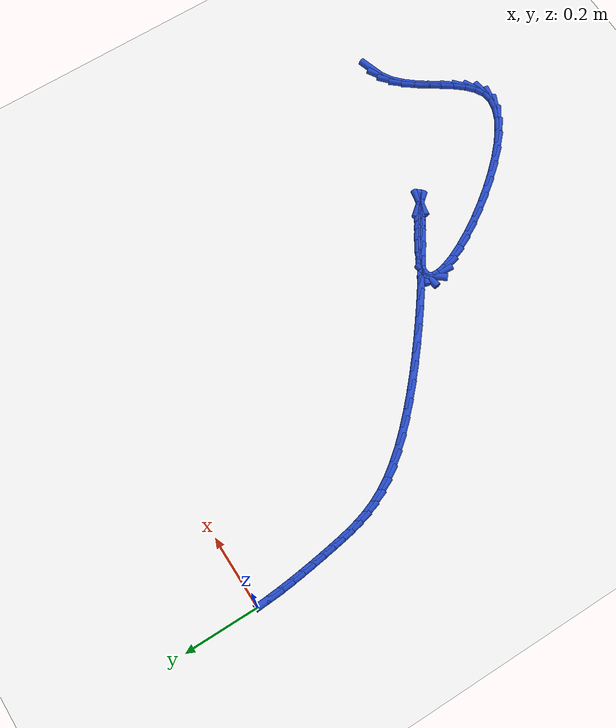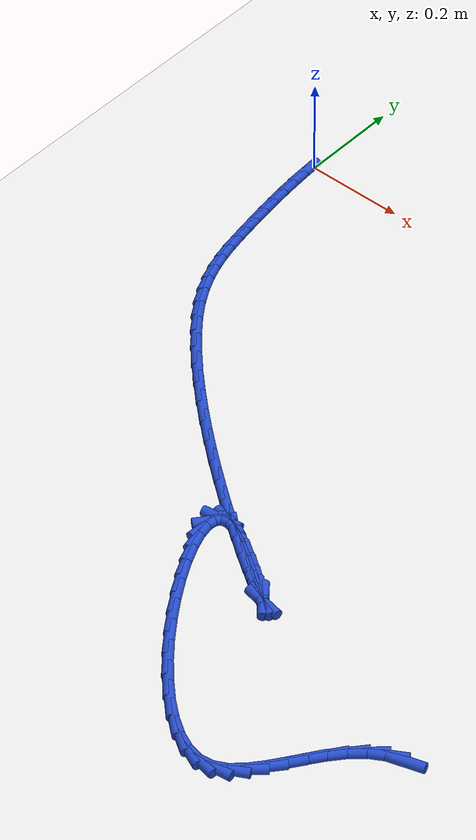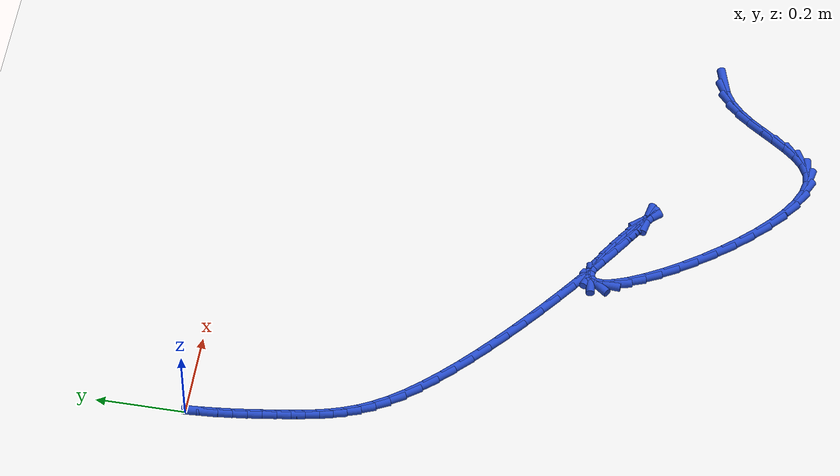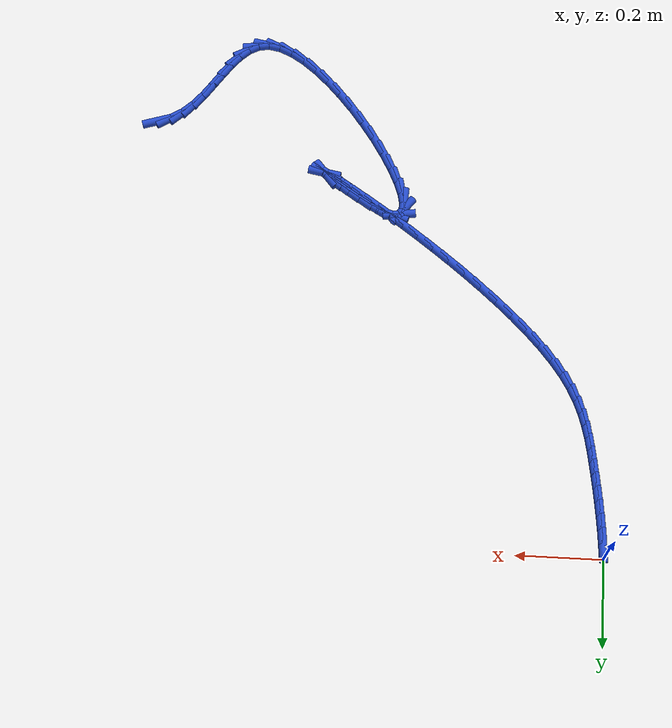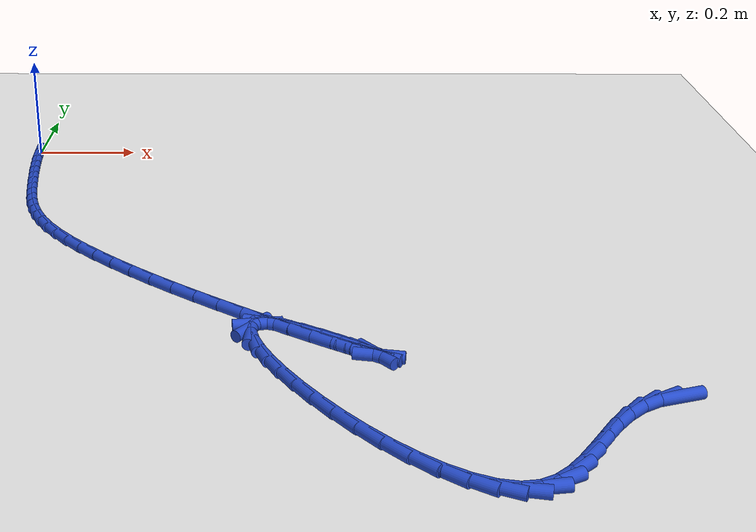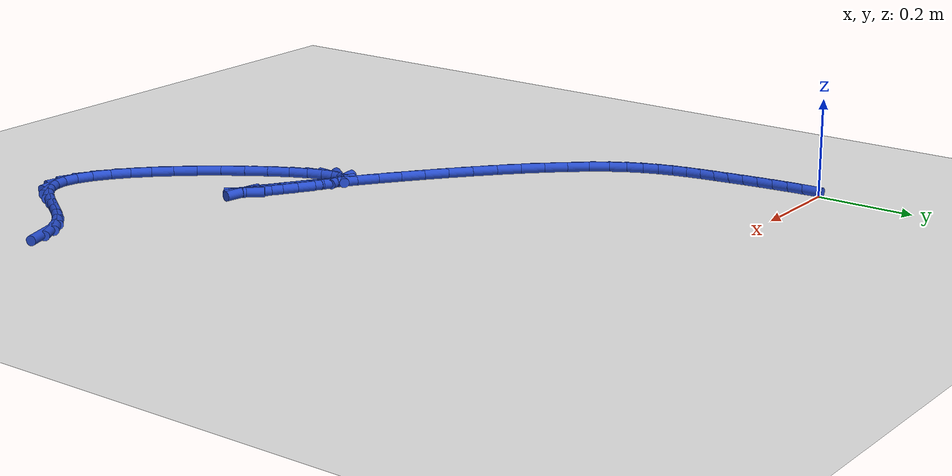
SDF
<sdf version="1.6">
 <world name="default">
  <model name="ground_plane">
   <static>1</static>
   <link name="link">
    <collision name="collision">
     <geometry><plane><normal>0 0 1</normal><size>100 100</size></plane></geometry>
     <surface><friction><ode><mu>100</mu><mu2>50</mu2></ode></friction></surface>
    </collision>
    <visual name="visual">
     <cast_shadows>0</cast_shadows>
     <geometry><plane><normal>0 0 1</normal><size>100 100</size></plane></geometry>
     <material>
      <script><uri>file://media/materials/scripts/gazebo.material</uri><name>Gazebo/WhiteGlow</name></script>
     </material>
    </visual>
   </link>
  </model>
  <model name="line">
   <link name="link_210">
    <pose>1.1038626554875755 -1.0373689402606108 0.01 0 1.57 0.30847133711964436</pose>
    <collision name="collision">
     <geometry><cylinder><radius>0.01</radius><length>0.08</length></cylinder></geometry>
    </collision>
    <visual name="visual">
     <material>
      <script><name>Gazebo/Blue</name><uri>file://media/materials/scripts/gazebo.material</uri></script>
     </material>
     <geometry><cylinder><radius>0.01</radius><length>0.08</length></cylinder></geometry>
    </visual>
   </link>
   <link name="link_211">
    <pose>1.0733919023143728 -1.0470782266799874 0.01 0 1.57 0.5443732780938487</pose>
    <collision name="collision">
     <geometry><cylinder><radius>0.01</radius><length>0.08</length></cylinder></geometry>
    </collision>
    <visual name="visual">
     <material>
      <script><name>Gazebo/Blue</name><uri>file://media/materials/scripts/gazebo.material</uri></script>
     </material>
     <geometry><cylinder><radius>0.01</radius><length>0.08</length></cylinder></geometry>
    </visual>
   </link>
   <link name="link_212">
    <pose>1.0458751342632495 -1.0637366015787313 0.01 0 1.57 0.7444928059844719</pose>
    <collision name="collision">
     <geometry><cylinder><radius>0.01</radius><length>0.08</length></cylinder></geometry>
    </collision>
    <visual name="visual">
     <material>
      <script><name>Gazebo/Blue</name><uri>file://media/materials/scripts/gazebo.material</uri></script>
     </material>
     <geometry><cylinder><radius>0.01</radius><length>0.08</length></cylinder></geometry>
    </visual>
   </link>
   <link name="link_213">
    <pose>1.0212441554297766 -1.086430652706234 0.01 0 1.57 0.8749385967605853</pose>
    <collision name="collision">
     <geometry><cylinder><radius>0.01</radius><length>0.08</length></cylinder></geometry>
    </collision>
    <visual name="visual">
     <material>
      <script><name>Gazebo/Blue</name><uri>file://media/materials/scripts/gazebo.material</uri></script>
     </material>
     <geometry><cylinder><radius>0.01</radius><length>0.08</length></cylinder></geometry>
    </visual>
   </link>
   <link name="link_214">
    <pose>0.9988091310473631 -1.1132914836131362 0.01 0 1.57 0.948249512098294</pose>
    <collision name="collision">
     <geometry><cylinder><radius>0.01</radius><length>0.08</length></cylinder></geometry>
    </collision>
    <visual name="visual">
     <material>
      <script><name>Gazebo/Blue</name><uri>file://media/materials/scripts/gazebo.material</uri></script>
     </material>
     <geometry><cylinder><radius>0.01</radius><length>0.08</length></cylinder></geometry>
    </visual>
   </link>
   <link name="link_215">
    <pose>0.9778801887620253 -1.1424501400767286 0.01 0 1.57 0.973776527311799</pose>
    <collision name="collision">
     <geometry><cylinder><radius>0.01</radius><length>0.08</length></cylinder></geometry>
    </collision>
    <visual name="visual">
     <material>
      <script><name>Gazebo/Blue</name><uri>file://media/materials/scripts/gazebo.material</uri></script>
     </material>
     <geometry><cylinder><radius>0.01</radius><length>0.08</length></cylinder></geometry>
    </visual>
   </link>
   <link name="link_216">
    <pose>0.9577674562197799 -1.1720376678743023 0.01 0 1.57 0.9533500628831781</pose>
    <collision name="collision">
     <geometry><cylinder><radius>0.01</radius><length>0.08</length></cylinder></geometry>
    </collision>
    <visual name="visual">
     <material>
      <script><name>Gazebo/Blue</name><uri>file://media/materials/scripts/gazebo.material</uri></script>
     </material>
     <geometry><cylinder><radius>0.01</radius><length>0.08</length></cylinder></geometry>
    </visual>
   </link>
   <link name="link_217">
    <pose>0.9377810610666426 -1.200185112783149 0.01 0 1.57 0.8796026299777852</pose>
    <collision name="collision">
     <geometry><cylinder><radius>0.01</radius><length>0.08</length></cylinder></geometry>
    </collision>
    <visual name="visual">
     <material>
      <script><name>Gazebo/Blue</name><uri>file://media/materials/scripts/gazebo.material</uri></script>
     </material>
     <geometry><cylinder><radius>0.01</radius><length>0.08</length></cylinder></geometry>
    </visual>
   </link>
   <link name="link_218">
    <pose>0.9172311309486318 -1.2250235205805573 0.01 0 1.57 0.7337623150998082</pose>
    <collision name="collision">
     <geometry><cylinder><radius>0.01</radius><length>0.08</length></cylinder></geometry>
    </collision>
    <visual name="visual">
     <material>
      <script><name>Gazebo/Blue</name><uri>file://media/materials/scripts/gazebo.material</uri></script>
     </material>
     <geometry><cylinder><radius>0.01</radius><length>0.08</length></cylinder></geometry>
    </visual>
   </link>
   <link name="link_219">
    <pose>0.8954277935117633 -1.2446839370438199 0.01 0 1.57 0.48827091035880776</pose>
    <collision name="collision">
     <geometry><cylinder><radius>0.01</radius><length>0.08</length></cylinder></geometry>
    </collision>
    <visual name="visual">
     <material>
      <script><name>Gazebo/Blue</name><uri>file://media/materials/scripts/gazebo.material</uri></script>
     </material>
     <geometry><cylinder><radius>0.01</radius><length>0.08</length></cylinder></geometry>
    </visual>
   </link>
   <link name="link_220">
    <pose>0.8716811764020539 -1.257297407950227 0.01 0 1.57 0.14168065350604506</pose>
    <collision name="collision">
     <geometry><cylinder><radius>0.01</radius><length>0.08</length></cylinder></geometry>
    </collision>
    <visual name="visual">
     <material>
      <script><name>Gazebo/Blue</name><uri>file://media/materials/scripts/gazebo.material</uri></script>
     </material>
     <geometry><cylinder><radius>0.01</radius><length>0.08</length></cylinder></geometry>
    </visual>
   </link>
   <link name="link_221">
    <pose>0.8453287198915506 -1.2610562256922115 0.01 0 1.57 -0.1867555192694295</pose>
    <collision name="collision">
     <geometry><cylinder><radius>0.01</radius><length>0.08</length></cylinder></geometry>
    </collision>
    <visual name="visual">
     <material>
      <script><name>Gazebo/Blue</name><uri>file://media/materials/scripts/gazebo.material</uri></script>
     </material>
     <geometry><cylinder><radius>0.01</radius><length>0.08</length></cylinder></geometry>
    </visual>
   </link>
   <link name="link_222">
    <pose>0.8163440854851246 -1.2555793633829757 0.01 0 1.57 -0.4149321413124867</pose>
    <collision name="collision">
     <geometry><cylinder><radius>0.01</radius><length>0.08</length></cylinder></geometry>
    </collision>
    <visual name="visual">
     <material>
      <script><name>Gazebo/Blue</name><uri>file://media/materials/scripts/gazebo.material</uri></script>
     </material>
     <geometry><cylinder><radius>0.01</radius><length>0.08</length></cylinder></geometry>
    </visual>
   </link>
   <link name="link_223">
    <pose>0.7853416497383952 -1.241922551922556 0.01 0 1.57 -0.569227125230019</pose>
    <collision name="collision">
     <geometry><cylinder><radius>0.01</radius><length>0.08</length></cylinder></geometry>
    </collision>
    <visual name="visual">
     <material>
      <script><name>Gazebo/Blue</name><uri>file://media/materials/scripts/gazebo.material</uri></script>
     </material>
     <geometry><cylinder><radius>0.01</radius><length>0.08</length></cylinder></geometry>
    </visual>
   </link>
   <link name="link_224">
    <pose>0.7529640006105545 -1.2212047842706442 0.01 0 1.57 -0.6778915078162675</pose>
    <collision name="collision">
     <geometry><cylinder><radius>0.01</radius><length>0.08</length></cylinder></geometry>
    </collision>
    <visual name="visual">
     <material>
      <script><name>Gazebo/Blue</name><uri>file://media/materials/scripts/gazebo.material</uri></script>
     </material>
     <geometry><cylinder><radius>0.01</radius><length>0.08</length></cylinder></geometry>
    </visual>
   </link>
   <link name="link_225">
    <pose>0.7198537260607945 -1.1945450533869302 0.01 0 1.57 -0.7588501219504012</pose>
    <collision name="collision">
     <geometry><cylinder><radius>0.01</radius><length>0.08</length></cylinder></geometry>
    </collision>
    <visual name="visual">
     <material>
      <script><name>Gazebo/Blue</name><uri>file://media/materials/scripts/gazebo.material</uri></script>
     </material>
     <geometry><cylinder><radius>0.01</radius><length>0.08</length></cylinder></geometry>
    </visual>
   </link>
   <link name="link_226">
    <pose>0.6866534140483062 -1.1630623522311034 0.01 0 1.57 -0.8228088413324817</pose>
    <collision name="collision">
     <geometry><cylinder><radius>0.01</radius><length>0.08</length></cylinder></geometry>
    </collision>
    <visual name="visual">
     <material>
      <script><name>Gazebo/Blue</name><uri>file://media/materials/scripts/gazebo.material</uri></script>
     </material>
     <geometry><cylinder><radius>0.01</radius><length>0.08</length></cylinder></geometry>
    </visual>
   </link>
   <link name="link_227">
    <pose>0.654005652532284 -1.1278756737628566 0.01 0 1.57 -0.8764294449760363</pose>
    <collision name="collision">
     <geometry><cylinder><radius>0.01</radius><length>0.08</length></cylinder></geometry>
    </collision>
    <visual name="visual">
     <material>
      <script><name>Gazebo/Blue</name><uri>file://media/materials/scripts/gazebo.material</uri></script>
     </material>
     <geometry><cylinder><radius>0.01</radius><length>0.08</length></cylinder></geometry>
    </visual>
   </link>
   <link name="link_228">
    <pose>0.6225530294719188 -1.090104010941878 0.01 0 1.57 -0.9242576431454509</pose>
    <collision name="collision">
     <geometry><cylinder><radius>0.01</radius><length>0.08</length></cylinder></geometry>
    </collision>
    <visual name="visual">
     <material>
      <script><name>Gazebo/Blue</name><uri>file://media/materials/scripts/gazebo.material</uri></script>
     </material>
     <geometry><cylinder><radius>0.01</radius><length>0.08</length></cylinder></geometry>
    </visual>
   </link>
   <link name="link_229">
    <pose>0.5929381328264027 -1.0508663567278596 0.01 0 1.57 -0.9698803202058411</pose>
    <collision name="collision">
     <geometry><cylinder><radius>0.01</radius><length>0.08</length></cylinder></geometry>
    </collision>
    <visual name="visual">
     <material>
      <script><name>Gazebo/Blue</name><uri>file://media/materials/scripts/gazebo.material</uri></script>
     </material>
     <geometry><cylinder><radius>0.01</radius><length>0.08</length></cylinder></geometry>
    </visual>
   </link>
   <link name="link_230">
    <pose>0.5658035505549278 -1.011281704080491 0.01 0 1.57 -1.0167720739039834</pose>
    <collision name="collision">
     <geometry><cylinder><radius>0.01</radius><length>0.08</length></cylinder></geometry>
    </collision>
    <visual name="visual">
     <material>
      <script><name>Gazebo/Blue</name><uri>file://media/materials/scripts/gazebo.material</uri></script>
     </material>
     <geometry><cylinder><radius>0.01</radius><length>0.08</length></cylinder></geometry>
    </visual>
   </link>
   <link name="link_231">
    <pose>0.5417918706166863 -0.9724690459594629 0.01 0 1.57 -1.0692168043287593</pose>
    <collision name="collision">
     <geometry><cylinder><radius>0.01</radius><length>0.08</length></cylinder></geometry>
    </collision>
    <visual name="visual">
     <material>
      <script><name>Gazebo/Blue</name><uri>file://media/materials/scripts/gazebo.material</uri></script>
     </material>
     <geometry><cylinder><radius>0.01</radius><length>0.08</length></cylinder></geometry>
    </visual>
   </link>
   <link name="link_232">
    <pose>0.5215456809708701 -0.9355473753244653 0.01 0 1.57 -1.133862747817723</pose>
    <collision name="collision">
     <geometry><cylinder><radius>0.01</radius><length>0.08</length></cylinder></geometry>
    </collision>
    <visual name="visual">
     <material>
      <script><name>Gazebo/Blue</name><uri>file://media/materials/scripts/gazebo.material</uri></script>
     </material>
     <geometry><cylinder><radius>0.01</radius><length>0.08</length></cylinder></geometry>
    </visual>
   </link>
   <link name="link_233">
    <pose>0.5057075695766714 -0.9016356851351892 0.01 0 1.57 -1.2232902123342984</pose>
    <collision name="collision">
     <geometry><cylinder><radius>0.01</radius><length>0.08</length></cylinder></geometry>
    </collision>
    <visual name="visual">
     <material>
      <script><name>Gazebo/Blue</name><uri>file://media/materials/scripts/gazebo.material</uri></script>
     </material>
     <geometry><cylinder><radius>0.01</radius><length>0.08</length></cylinder></geometry>
    </visual>
   </link>
   <link name="link_234">
    <pose>0.49492012439328203 -0.8718529683513236 0.01 0 1.57 -1.3660735151255439</pose>
    <collision name="collision">
     <geometry><cylinder><radius>0.01</radius><length>0.08</length></cylinder></geometry>
    </collision>
    <visual name="visual">
     <material>
      <script><name>Gazebo/Blue</name><uri>file://media/materials/scripts/gazebo.material</uri></script>
     </material>
     <geometry><cylinder><radius>0.01</radius><length>0.08</length></cylinder></geometry>
    </visual>
   </link>
   <link name="link_235">
    <pose>0.4898259333798948 -0.8473182179325613 0.01 0 1.57 1.50255889908963</pose>
    <collision name="collision">
     <geometry><cylinder><radius>0.01</radius><length>0.08</length></cylinder></geometry>
    </collision>
    <visual name="visual">
     <material>
      <script><name>Gazebo/Blue</name><uri>file://media/materials/scripts/gazebo.material</uri></script>
     </material>
     <geometry><cylinder><radius>0.01</radius><length>0.08</length></cylinder></geometry>
    </visual>
   </link>
   <link name="link_236">
    <pose>0.4910675844957013 -0.8291504268385915 0.01 0 1.57 0.9149076911949869</pose>
    <collision name="collision">
     <geometry><cylinder><radius>0.01</radius><length>0.08</length></cylinder></geometry>
    </collision>
    <visual name="visual">
     <material>
      <script><name>Gazebo/Blue</name><uri>file://media/materials/scripts/gazebo.material</uri></script>
     </material>
     <geometry><cylinder><radius>0.01</radius><length>0.08</length></cylinder></geometry>
    </visual>
   </link>
   <link name="link_237">
    <pose>0.4992876656998938 -0.8184685880291046 0.01 0 1.57 0.13036435614920752</pose>
    <collision name="collision">
     <geometry><cylinder><radius>0.01</radius><length>0.08</length></cylinder></geometry>
    </collision>
    <visual name="visual">
     <material>
      <script><name>Gazebo/Blue</name><uri>file://media/materials/scripts/gazebo.material</uri></script>
     </material>
     <geometry><cylinder><radius>0.01</radius><length>0.08</length></cylinder></geometry>
    </visual>
   </link>
   <link name="link_238">
    <pose>0.5151287649516642 -0.816391694463791 0.01 0 1.57 -0.2933913117645902</pose>
    <collision name="collision">
     <geometry><cylinder><radius>0.01</radius><length>0.08</length></cylinder></geometry>
    </collision>
    <visual name="visual">
     <material>
      <script><name>Gazebo/Blue</name><uri>file://media/materials/scripts/gazebo.material</uri></script>
     </material>
     <geometry><cylinder><radius>0.01</radius><length>0.08</length></cylinder></geometry>
    </visual>
   </link>
   <link name="link_239">
    <pose>0.5387424243481173 -0.82352561358414 0.01 0 1.57 -0.4575354617844963</pose>
    <collision name="collision">
     <geometry><cylinder><radius>0.01</radius><length>0.08</length></cylinder></geometry>
    </collision>
    <visual name="visual">
     <material>
      <script><name>Gazebo/Blue</name><uri>file://media/materials/scripts/gazebo.material</uri></script>
     </material>
     <geometry><cylinder><radius>0.01</radius><length>0.08</length></cylinder></geometry>
    </visual>
   </link>
   <link name="link_240">
    <pose>0.567706915884786 -0.8377872367984707 0.01 0 1.57 -0.535581476459077</pose>
    <collision name="collision">
     <geometry><cylinder><radius>0.01</radius><length>0.08</length></cylinder></geometry>
    </collision>
    <visual name="visual">
     <material>
      <script><name>Gazebo/Blue</name><uri>file://media/materials/scripts/gazebo.material</uri></script>
     </material>
     <geometry><cylinder><radius>0.01</radius><length>0.08</length></cylinder></geometry>
    </visual>
   </link>
   <link name="link_241">
    <pose>0.5987604561733543 -0.8562156274191218 0.01 0 1.57 -0.5813353447067584</pose>
    <collision name="collision">
     <geometry><cylinder><radius>0.01</radius><length>0.08</length></cylinder></geometry>
    </collision>
    <visual name="visual">
     <material>
      <script><name>Gazebo/Blue</name><uri>file://media/materials/scripts/gazebo.material</uri></script>
     </material>
     <geometry><cylinder><radius>0.01</radius><length>0.08</length></cylinder></geometry>
    </visual>
   </link>
   <link name="link_242">
    <pose>0.6286407933931871 -0.8758493592632642 0.01 0 1.57 -0.6124707094036066</pose>
    <collision name="collision">
     <geometry><cylinder><radius>0.01</radius><length>0.08</length></cylinder></geometry>
    </collision>
    <visual name="visual">
     <material>
      <script><name>Gazebo/Blue</name><uri>file://media/materials/scripts/gazebo.material</uri></script>
     </material>
     <geometry><cylinder><radius>0.01</radius><length>0.08</length></cylinder></geometry>
    </visual>
   </link>
   <link name="link_243">
    <pose>0.6540856757236498 -0.8937270061480698 0.01 0 1.57 -0.6394360140275928</pose>
    <collision name="collision">
     <geometry><cylinder><radius>0.01</radius><length>0.08</length></cylinder></geometry>
    </collision>
    <visual name="visual">
     <material>
      <script><name>Gazebo/Blue</name><uri>file://media/materials/scripts/gazebo.material</uri></script>
     </material>
     <geometry><cylinder><radius>0.01</radius><length>0.08</length></cylinder></geometry>
    </visual>
   </link>
   <link name="link_244">
    <pose>0.6722002949063463 -0.9071982608144863 0.01 0 1.57 -0.6874297221595205</pose>
    <collision name="collision">
     <geometry><cylinder><radius>0.01</radius><length>0.08</length></cylinder></geometry>
    </collision>
    <visual name="visual">
     <material>
      <script><name>Gazebo/Blue</name><uri>file://media/materials/scripts/gazebo.material</uri></script>
     </material>
     <geometry><cylinder><radius>0.01</radius><length>0.08</length></cylinder></geometry>
    </visual>
   </link>
   <link name="link_245">
    <pose>0.6825405604684266 -0.9156878684966192 0.01 0 1.57 -0.8802708457206126</pose>
    <collision name="collision">
     <geometry><cylinder><radius>0.01</radius><length>0.08</length></cylinder></geometry>
    </collision>
    <visual name="visual">
     <material>
      <script><name>Gazebo/Blue</name><uri>file://media/materials/scripts/gazebo.material</uri></script>
     </material>
     <geometry><cylinder><radius>0.01</radius><length>0.08</length></cylinder></geometry>
    </visual>
   </link>
   <link name="link_246">
    <pose>0.6856650747933685 -0.9194695666396175 0.01 0 1.57 -0.18209547283561361</pose>
    <collision name="collision">
     <geometry><cylinder><radius>0.01</radius><length>0.08</length></cylinder></geometry>
    </collision>
    <visual name="visual">
     <material>
      <script><name>Gazebo/Blue</name><uri>file://media/materials/scripts/gazebo.material</uri></script>
     </material>
     <geometry><cylinder><radius>0.01</radius><length>0.08</length></cylinder></geometry>
    </visual>
   </link>
   <link name="link_247">
    <pose>0.682135445986232 -0.918819637669574 0.01 0 1.57 -0.4631645856396603</pose>
    <collision name="collision">
     <geometry><cylinder><radius>0.01</radius><length>0.08</length></cylinder></geometry>
    </collision>
    <visual name="visual">
     <material>
      <script><name>Gazebo/Blue</name><uri>file://media/materials/scripts/gazebo.material</uri></script>
     </material>
     <geometry><cylinder><radius>0.01</radius><length>0.08</length></cylinder></geometry>
    </visual>
   </link>
   <link name="link_248">
    <pose>0.6725132821520766 -0.9140143640125812 0.01 0 1.57 -0.5204101551266179</pose>
    <collision name="collision">
     <geometry><cylinder><radius>0.01</radius><length>0.08</length></cylinder></geometry>
    </collision>
    <visual name="visual">
     <material>
      <script><name>Gazebo/Blue</name><uri>file://media/materials/scripts/gazebo.material</uri></script>
     </material>
     <geometry><cylinder><radius>0.01</radius><length>0.08</length></cylinder></geometry>
    </visual>
   </link>
   <link name="link_249">
    <pose>0.6573601913959622 -0.9053300280947313 0.01 0 1.57 -0.5481906660058694</pose>
    <collision name="collision">
     <geometry><cylinder><radius>0.01</radius><length>0.08</length></cylinder></geometry>
    </collision>
    <visual name="visual">
     <material>
      <script><name>Gazebo/Blue</name><uri>file://media/materials/scripts/gazebo.material</uri></script>
     </material>
     <geometry><cylinder><radius>0.01</radius><length>0.08</length></cylinder></geometry>
    </visual>
   </link>
   <link name="link_250">
    <pose>0.6372377818229483 -0.8930429123421174 0.01 0 1.57 -0.5668318291009081</pose>
    <collision name="collision">
     <geometry><cylinder><radius>0.01</radius><length>0.08</length></cylinder></geometry>
    </collision>
    <visual name="visual">
     <material>
      <script><name>Gazebo/Blue</name><uri>file://media/materials/scripts/gazebo.material</uri></script>
     </material>
     <geometry><cylinder><radius>0.01</radius><length>0.08</length></cylinder></geometry>
    </visual>
   </link>
   <link name="link_251">
    <pose>0.6127076615380946 -0.877429299180832 0.01 0 1.57 -0.5817885385971517</pose>
    <collision name="collision">
     <geometry><cylinder><radius>0.01</radius><length>0.08</length></cylinder></geometry>
    </collision>
    <visual name="visual">
     <material>
      <script><name>Gazebo/Blue</name><uri>file://media/materials/scripts/gazebo.material</uri></script>
     </material>
     <geometry><cylinder><radius>0.01</radius><length>0.08</length></cylinder></geometry>
    </visual>
   </link>
   <link name="link_252">
    <pose>0.5843314386464599 -0.8587654710369663 0.01 0 1.57 -0.5951971990686081</pose>
    <collision name="collision">
     <geometry><cylinder><radius>0.01</radius><length>0.08</length></cylinder></geometry>
    </collision>
    <visual name="visual">
     <material>
      <script><name>Gazebo/Blue</name><uri>file://media/materials/scripts/gazebo.material</uri></script>
     </material>
     <geometry><cylinder><radius>0.01</radius><length>0.08</length></cylinder></geometry>
    </visual>
   </link>
   <link name="link_253">
    <pose>0.5526707212531057 -0.837327710336615 0.01 0 1.57 -0.608122997849498</pose>
    <collision name="collision">
     <geometry><cylinder><radius>0.01</radius><length>0.08</length></cylinder></geometry>
    </collision>
    <visual name="visual">
     <material>
      <script><name>Gazebo/Blue</name><uri>file://media/materials/scripts/gazebo.material</uri></script>
     </material>
     <geometry><cylinder><radius>0.01</radius><length>0.08</length></cylinder></geometry>
    </visual>
   </link>
   <link name="link_254">
    <pose>0.5182871174630905 -0.8133922995058694 0.01 0 1.57 -0.6212144137801294</pose>
    <collision name="collision">
     <geometry><cylinder><radius>0.01</radius><length>0.08</length></cylinder></geometry>
    </collision>
    <visual name="visual">
     <material>
      <script><name>Gazebo/Blue</name><uri>file://media/materials/scripts/gazebo.material</uri></script>
     </material>
     <geometry><cylinder><radius>0.01</radius><length>0.08</length></cylinder></geometry>
    </visual>
   </link>
   <link name="link_255">
    <pose>0.4817422353814746 -0.7872355209708225 0.01 0 1.57 -0.6349477499964394</pose>
    <collision name="collision">
     <geometry><cylinder><radius>0.01</radius><length>0.08</length></cylinder></geometry>
    </collision>
    <visual name="visual">
     <material>
      <script><name>Gazebo/Blue</name><uri>file://media/materials/scripts/gazebo.material</uri></script>
     </material>
     <geometry><cylinder><radius>0.01</radius><length>0.08</length></cylinder></geometry>
    </visual>
   </link>
   <link name="link_256">
    <pose>0.4435976831133172 -0.7591336571575669 0.01 0 1.57 -0.6497390716269937</pose>
    <collision name="collision">
     <geometry><cylinder><radius>0.01</radius><length>0.08</length></cylinder></geometry>
    </collision>
    <visual name="visual">
     <material>
      <script><name>Gazebo/Blue</name><uri>file://media/materials/scripts/gazebo.material</uri></script>
     </material>
     <geometry><cylinder><radius>0.01</radius><length>0.08</length></cylinder></geometry>
    </visual>
   </link>
   <link name="link_257">
    <pose>0.4044150687636782 -0.7293629904921947 0.01 0 1.57 -0.6660080645930173</pose>
    <collision name="collision">
     <geometry><cylinder><radius>0.01</radius><length>0.08</length></cylinder></geometry>
    </collision>
    <visual name="visual">
     <material>
      <script><name>Gazebo/Blue</name><uri>file://media/materials/scripts/gazebo.material</uri></script>
     </material>
     <geometry><cylinder><radius>0.01</radius><length>0.08</length></cylinder></geometry>
    </visual>
   </link>
   <link name="link_258">
    <pose>0.3647560004376172 -0.6981998034007988 0.01 0 1.57 -0.6842256406687334</pose>
    <collision name="collision">
     <geometry><cylinder><radius>0.01</radius><length>0.08</length></cylinder></geometry>
    </collision>
    <visual name="visual">
     <material>
      <script><name>Gazebo/Blue</name><uri>file://media/materials/scripts/gazebo.material</uri></script>
     </material>
     <geometry><cylinder><radius>0.01</radius><length>0.08</length></cylinder></geometry>
    </visual>
   </link>
   <link name="link_259">
    <pose>0.3251820862401938 -0.6659203783094715 0.01 0 1.57 -0.7049607031078751</pose>
    <collision name="collision">
     <geometry><cylinder><radius>0.01</radius><length>0.08</length></cylinder></geometry>
    </collision>
    <visual name="visual">
     <material>
      <script><name>Gazebo/Blue</name><uri>file://media/materials/scripts/gazebo.material</uri></script>
     </material>
     <geometry><cylinder><radius>0.01</radius><length>0.08</length></cylinder></geometry>
    </visual>
   </link>
   <link name="link_260">
    <pose>0.2862549342764679 -0.6328009976443058 0.01 0 1.57 -0.7289368916373681</pose>
    <collision name="collision">
     <geometry><cylinder><radius>0.01</radius><length>0.08</length></cylinder></geometry>
    </collision>
    <visual name="visual">
     <material>
      <script><name>Gazebo/Blue</name><uri>file://media/materials/scripts/gazebo.material</uri></script>
     </material>
     <geometry><cylinder><radius>0.01</radius><length>0.08</length></cylinder></geometry>
    </visual>
   </link>
   <link name="link_261">
    <pose>0.24853615265149792 -0.5991179438313927 0.01 0 1.57 -0.757110803256845</pose>
    <collision name="collision">
     <geometry><cylinder><radius>0.01</radius><length>0.08</length></cylinder></geometry>
    </collision>
    <visual name="visual">
     <material>
      <script><name>Gazebo/Blue</name><uri>file://media/materials/scripts/gazebo.material</uri></script>
     </material>
     <geometry><cylinder><radius>0.01</radius><length>0.08</length></cylinder></geometry>
    </visual>
   </link>
   <link name="link_262">
    <pose>0.21258734947034594 -0.5651474992968274 0.01 0 1.57 -0.7907877980457688</pose>
    <collision name="collision">
     <geometry><cylinder><radius>0.01</radius><length>0.08</length></cylinder></geometry>
    </collision>
    <visual name="visual">
     <material>
      <script><name>Gazebo/Blue</name><uri>file://media/materials/scripts/gazebo.material</uri></script>
     </material>
     <geometry><cylinder><radius>0.01</radius><length>0.08</length></cylinder></geometry>
    </visual>
   </link>
   <link name="link_263">
    <pose>0.17897013283807037 -0.531165946466701 0.01 0 1.57 -0.8318008650655798</pose>
    <collision name="collision">
     <geometry><cylinder><radius>0.01</radius><length>0.08</length></cylinder></geometry>
    </collision>
    <visual name="visual">
     <material>
      <script><name>Gazebo/Blue</name><uri>file://media/materials/scripts/gazebo.material</uri></script>
     </material>
     <geometry><cylinder><radius>0.01</radius><length>0.08</length></cylinder></geometry>
    </visual>
   </link>
   <link name="link_264">
    <pose>0.1482461108597309 -0.49744956776710614 0.01 0 1.57 -0.8827941587394138</pose>
    <collision name="collision">
     <geometry><cylinder><radius>0.01</radius><length>0.08</length></cylinder></geometry>
    </collision>
    <visual name="visual">
     <material>
      <script><name>Gazebo/Blue</name><uri>file://media/materials/scripts/gazebo.material</uri></script>
     </material>
     <geometry><cylinder><radius>0.01</radius><length>0.08</length></cylinder></geometry>
    </visual>
   </link>
   <link name="link_265">
    <pose>0.12097689164038732 -0.46427464562413545 0.01 0 1.57 -0.9476761688779348</pose>
    <collision name="collision">
     <geometry><cylinder><radius>0.01</radius><length>0.08</length></cylinder></geometry>
    </collision>
    <visual name="visual">
     <material>
      <script><name>Gazebo/Blue</name><uri>file://media/materials/scripts/gazebo.material</uri></script>
     </material>
     <geometry><cylinder><radius>0.01</radius><length>0.08</length></cylinder></geometry>
    </visual>
   </link>
   <link name="link_266">
    <pose>0.09772403691017979 -0.43191744254054687 0.01 0 1.57 -1.0282095496317005</pose>
    <collision name="collision">
     <geometry><cylinder><radius>0.01</radius><length>0.08</length></cylinder></geometry>
    </collision>
    <visual name="visual">
     <material>
      <script><name>Gazebo/Blue</name><uri>file://media/materials/scripts/gazebo.material</uri></script>
     </material>
     <geometry><cylinder><radius>0.01</radius><length>0.08</length></cylinder></geometry>
    </visual>
   </link>
   <link name="link_267">
    <pose>0.07881256126868225 -0.40055259695888623 0.01 0 1.57 -1.1133486314549772</pose>
    <collision name="collision">
     <geometry><cylinder><radius>0.01</radius><length>0.08</length></cylinder></geometry>
    </collision>
    <visual name="visual">
     <material>
      <script><name>Gazebo/Blue</name><uri>file://media/materials/scripts/gazebo.material</uri></script>
     </material>
     <geometry><cylinder><radius>0.01</radius><length>0.08</length></cylinder></geometry>
    </visual>
   </link>
   <link name="link_268">
    <pose>0.06378051215812978 -0.3700166548764804 0.01 0 1.57 -1.1960113493118905</pose>
    <collision name="collision">
     <geometry><cylinder><radius>0.01</radius><length>0.08</length></cylinder></geometry>
    </collision>
    <visual name="visual">
     <material>
      <script><name>Gazebo/Blue</name><uri>file://media/materials/scripts/gazebo.material</uri></script>
     </material>
     <geometry><cylinder><radius>0.01</radius><length>0.08</length></cylinder></geometry>
    </visual>
   </link>
   <link name="link_269">
    <pose>0.05200248651065349 -0.3400759415932385 0.01 0 1.57 -1.2708117826915957</pose>
    <collision name="collision">
     <geometry><cylinder><radius>0.01</radius><length>0.08</length></cylinder></geometry>
    </collision>
    <visual name="visual">
     <material>
      <script><name>Gazebo/Blue</name><uri>file://media/materials/scripts/gazebo.material</uri></script>
     </material>
     <geometry><cylinder><radius>0.01</radius><length>0.08</length></cylinder></geometry>
    </visual>
   </link>
   <link name="link_270">
    <pose>0.04285308125838414 -0.3104967824090688 0.01 0 1.57 -1.332752478635909</pose>
    <collision name="collision">
     <geometry><cylinder><radius>0.01</radius><length>0.08</length></cylinder></geometry>
    </collision>
    <visual name="visual">
     <material>
      <script><name>Gazebo/Blue</name><uri>file://media/materials/scripts/gazebo.material</uri></script>
     </material>
     <geometry><cylinder><radius>0.01</radius><length>0.08</length></cylinder></geometry>
    </visual>
   </link>
   <link name="link_271">
    <pose>0.035706893333453366 -0.28104550262388206 0.01 0 1.57 -1.3780584297590488</pose>
    <collision name="collision">
     <geometry><cylinder><radius>0.01</radius><length>0.08</length></cylinder></geometry>
    </collision>
    <visual name="visual">
     <material>
      <script><name>Gazebo/Blue</name><uri>file://media/materials/scripts/gazebo.material</uri></script>
     </material>
     <geometry><cylinder><radius>0.01</radius><length>0.08</length></cylinder></geometry>
    </visual>
   </link>
   <link name="link_272">
    <pose>0.029938519667991874 -0.2514884275375867 0.01 0 1.57 -1.4045673067143023</pose>
    <collision name="collision">
     <geometry><cylinder><radius>0.01</radius><length>0.08</length></cylinder></geometry>
    </collision>
    <visual name="visual">
     <material>
      <script><name>Gazebo/Blue</name><uri>file://media/materials/scripts/gazebo.material</uri></script>
     </material>
     <geometry><cylinder><radius>0.01</radius><length>0.08</length></cylinder></geometry>
    </visual>
   </link>
   <link name="link_273">
    <pose>0.02492256070603427 -0.22159188386796796 0.01 0 1.57 -1.415637002574792</pose>
    <collision name="collision">
     <geometry><cylinder><radius>0.01</radius><length>0.08</length></cylinder></geometry>
    </collision>
    <visual name="visual">
     <material>
      <script><name>Gazebo/Blue</name><uri>file://media/materials/scripts/gazebo.material</uri></script>
     </material>
     <geometry><cylinder><radius>0.01</radius><length>0.08</length></cylinder></geometry>
    </visual>
   </link>
   <link name="link_274">
    <pose>0.020164887258931553 -0.19117519669525995 0.01 0 1.57 -1.4258257836452661</pose>
    <collision name="collision">
     <geometry><cylinder><radius>0.01</radius><length>0.08</length></cylinder></geometry>
    </collision>
    <visual name="visual">
     <material>
      <script><name>Gazebo/Blue</name><uri>file://media/materials/scripts/gazebo.material</uri></script>
     </material>
     <geometry><cylinder><radius>0.01</radius><length>0.08</length></cylinder></geometry>
    </visual>
   </link>
   <link name="link_275">
    <pose>0.015650113647917945 -0.16025097632145302 0.01 0 1.57 -1.4384074382641787</pose>
    <collision name="collision">
     <geometry><cylinder><radius>0.01</radius><length>0.08</length></cylinder></geometry>
    </collision>
    <visual name="visual">
     <material>
      <script><name>Gazebo/Blue</name><uri>file://media/materials/scripts/gazebo.material</uri></script>
     </material>
     <geometry><cylinder><radius>0.01</radius><length>0.08</length></cylinder></geometry>
    </visual>
   </link>
   <link name="link_276">
    <pose>0.011471961497730972 -0.12887588341980621 0.01 0 1.57 -1.4533695528033521</pose>
    <collision name="collision">
     <geometry><cylinder><radius>0.01</radius><length>0.08</length></cylinder></geometry>
    </collision>
    <visual name="visual">
     <material>
      <script><name>Gazebo/Blue</name><uri>file://media/materials/scripts/gazebo.material</uri></script>
     </material>
     <geometry><cylinder><radius>0.01</radius><length>0.08</length></cylinder></geometry>
    </visual>
   </link>
   <link name="link_277">
    <pose>0.00772415243310817 -0.0971065786635786 0.01 0 1.57 -1.470724989450899</pose>
    <collision name="collision">
     <geometry><cylinder><radius>0.01</radius><length>0.08</length></cylinder></geometry>
    </collision>
    <visual name="visual">
     <material>
      <script><name>Gazebo/Blue</name><uri>file://media/materials/scripts/gazebo.material</uri></script>
     </material>
     <geometry><cylinder><radius>0.01</radius><length>0.08</length></cylinder></geometry>
    </visual>
   </link>
   <link name="link_278">
    <pose>0.004500408078787064 -0.06499972272602919 0.01 0 1.57 -1.4905080578469865</pose>
    <collision name="collision">
     <geometry><cylinder><radius>0.01</radius><length>0.08</length></cylinder></geometry>
    </collision>
    <visual name="visual">
     <material>
      <script><name>Gazebo/Blue</name><uri>file://media/materials/scripts/gazebo.material</uri></script>
     </material>
     <geometry><cylinder><radius>0.01</radius><length>0.08</length></cylinder></geometry>
    </visual>
   </link>
   <link name="link_279">
    <pose>0.0018944500595051111 -0.032611976280416 0.01 0 1.57 -1.5127709132526184</pose>
    <collision name="collision">
     <geometry><cylinder><radius>0.01</radius><length>0.08</length></cylinder></geometry>
    </collision>
    <visual name="visual">
     <material>
      <script><name>Gazebo/Blue</name><uri>file://media/materials/scripts/gazebo.material</uri></script>
     </material>
     <geometry><cylinder><radius>0.01</radius><length>0.08</length></cylinder></geometry>
    </visual>
   </link>
  </model>
 </world>
</sdf>
